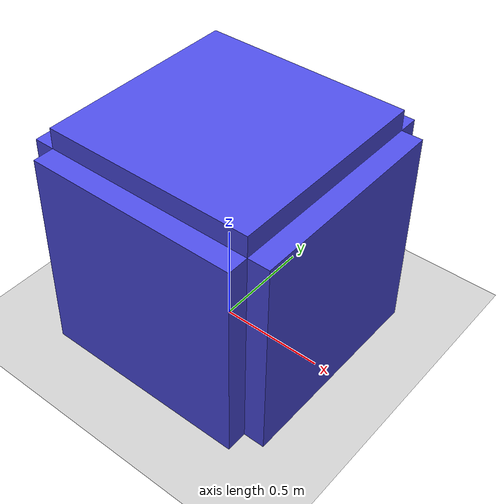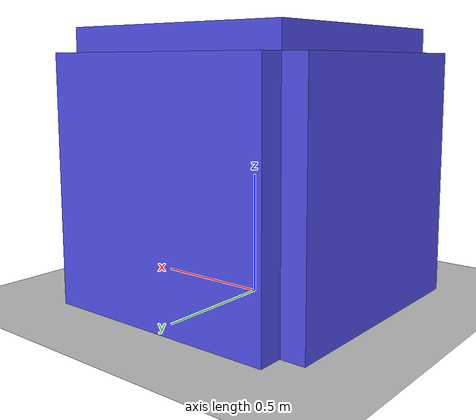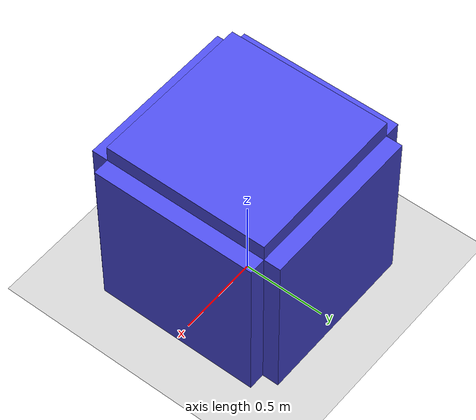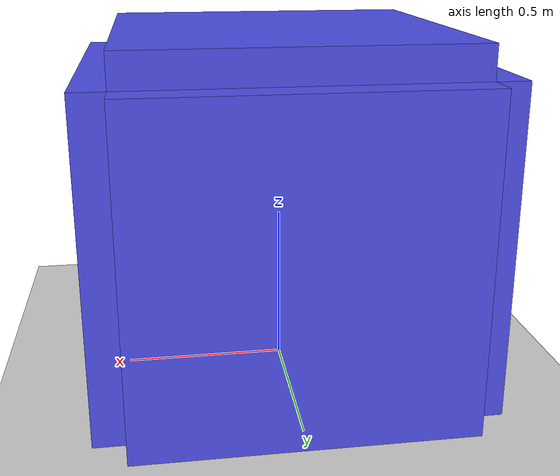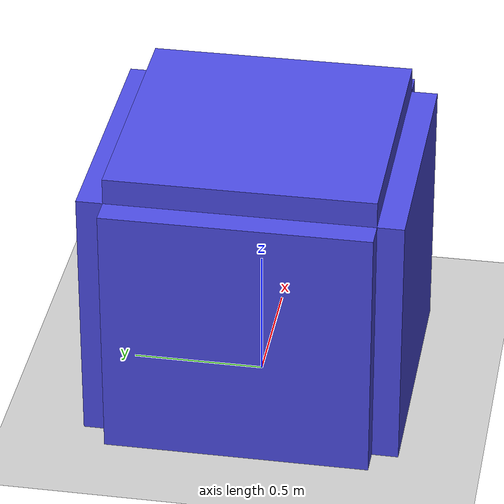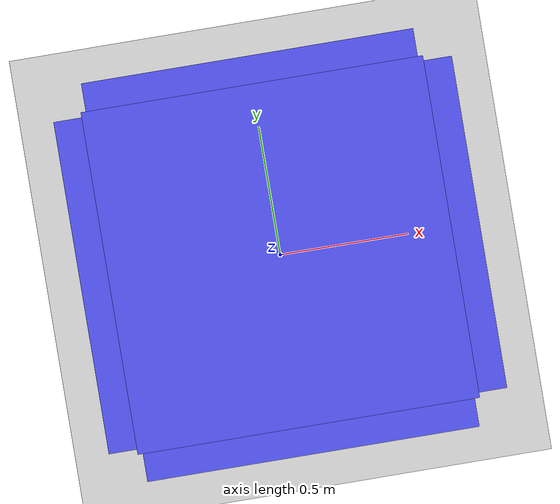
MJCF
<mujoco model="small_cabin">
  <asset>
    <texture builtin="gradient" height="256" rgb1=".9 .9 1." rgb2=".2 .3 .4" type="skybox" width="256"/>
    <texture file="../textures/light-gray-floor-tile.png" type="2d" name="texplane"/>
    <material name="floorplane" reflectance="0.01" shininess="0.0" specular="0.0" texrepeat="2 2" texture="texplane" texuniform="true"/>
    <!-- plaster walls -->
    <texture file="../textures/light-gray-plaster.png" type="2d" name="tex-light-gray-plaster"/>
    <material name="walls_mat" reflectance="0.0" shininess="0.1" specular="0.1" texrepeat="3 3" texture="tex-light-gray-plaster" texuniform="true" />

  </asset>
  <worldbody>
    <!-- Floor -->
    <geom condim="3" group="1" material="floorplane" name="floor" pos="0 0 0" size="1.5 1.5 .125" type="plane"/>
    <!-- Walls (visual only) -->
    <light pos="1.0 1.0 1.5" dir="-0.2 -0.2 -1" specular="0.3 0.3 0.3" directional="true" castshadow="false"/>
    <!-- Define walls surrounding the 1x1 area -->
    <!-- Left Wall -->
    <geom group="0" type="box" size="0.05 0.5 0.5" pos="-0.55 0 0.5" rgba="0.3 0.3 0.9 1"/>
    <geom group="1" type="box" size="0.05 0.5 0.5" pos="-0.55 0 0.5" rgba="0.3 0.3 0.9 1"/>
    <!-- Right Wall -->
    <geom group="0" type="box" size="0.05 0.5 0.5" pos="0.55 0 0.5" rgba="0.3 0.3 0.9 1"/>
    <geom group="1" type="box" size="0.05 0.5 0.5" pos="0.55 0 0.5" rgba="0.3 0.3 0.9 1"/>
    <!-- Front Wall -->
    <geom group="0" type="box" size="0.5 0.05 0.5" pos="0 0.55 0.5" rgba="0.3 0.3 0.9 1"/>
    <!-- Top Wall -->
    <geom group="0" type="box" size="0.5 0.5 0.05" pos="0 0.0 1.05" rgba="0.3 0.3 0.9 1"/>
    <geom group="1" type="box" size="0.5 0.5 0.05" pos="0 0.0 1.05" rgba="0.3 0.3 0.9 0.5"/>
    <!-- Back Wall -->
    <geom group="0" type="box" size="0.5 0.05 0.5" pos="0 -0.55 0.5" rgba="0.3 0.3 0.9 1"/>
    <geom group="1" type="box" size="0.5 0.05 0.5" pos="0 -0.55 0.5" rgba="0.3 0.3 0.9 1"/>

    <!-- front view -->
    <camera mode="fixed" name="frontview" pos="0.00 1.4 1.648" xyaxes="-1.000 -0.013 -0.000 0.009 -0.634 0.773"/>
    <!-- bird view -->
    <camera mode="fixed" name="birdview" pos="0 0 1.5" xyaxes="1.000 0.000 0.000 0.000 1.000 0.000"/>
    <!-- agent view -->
    <camera mode="fixed" name="agentview" pos="0.5 0 1.35" quat="0.653 0.271 0.271 0.653"/>
    <!-- side view -->
    <camera mode="fixed" name="sideview" pos="-0.05651774593317116 1.2761224129427358 1.4879572214102434" quat="0.009905065491771751 0.006877963156909582 0.5912228352893879 0.806418094001364" />
  </worldbody>
</mujoco>
